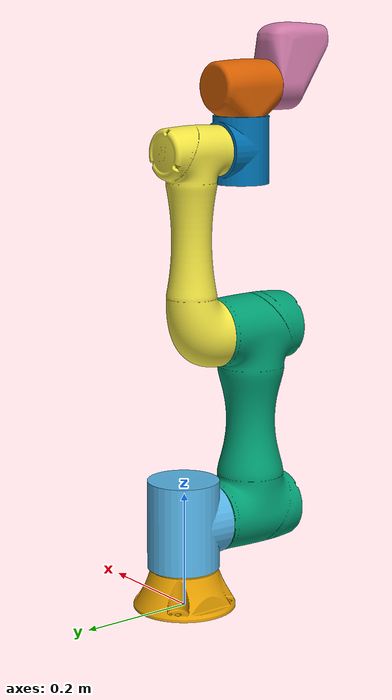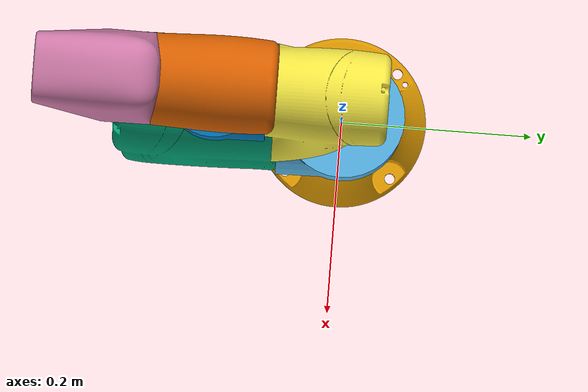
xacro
<?xml version="1.0"?>
<robot xmlns:xacro="http://www.ros.org/wiki/xacro" name="tm5-700">

  <xacro:arg name="ns" default="" />
  <xacro:arg name="prefix" default="" />
    <xacro:arg name="trans_hw_iface" default="hardware_interface/PositionJointInterface" />

  <xacro:include filename="$(find tm_description)/xacro/macro.gazebo.xacro" />
  <xacro:include filename="$(find tm_description)/xacro/macro.transmission.xacro" />
  <xacro:include filename="$(find tm_description)/xacro/macro.materials.xacro" />

  <!-- tm5-700 -->
  <!-- If the user want to use newly generated named robot description file as user_defined.urdf.xacro, -->
  <!-- you must modify 'macro.tm5-700-nominal.urdf.xacro' to 'user_defined.urdf.xacro'  -->
  <xacro:include filename="$(find tm_description)/xacro/macro.tm5-700-nominal.urdf.xacro" />

  <xacro:tmr_gazebo ns="$(arg ns)" prefix="$(arg prefix)" />
  <xacro:tmr_transmission prefix="$(arg prefix)" hw_iface="$(arg trans_hw_iface)" />
  <xacro:tmr_materials/>

  <!-- Arm -->
  <xacro:tm5-700 ns="$(arg ns)" prefix="$(arg prefix)" />

</robot>

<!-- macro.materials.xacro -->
<robot xmlns:xacro="http://www.ros.org/wiki/xacro">
  <xacro:macro name="tmr_materials">
    <material name="none">
      <color rgba="0.0 0.0 0.0 1.0" />
    </material>
    <material name="lightgrey">
      <color rgba="0.5 0.5 0.5 1.0" />
    </material>
    <material name="grey">
      <color rgba="0.75 0.75 0.75 1.0" />
    </material>
    <material name="white">
      <color rgba="0.95 0.95 0.95 1.0" />
    </material>
    <material name="red">
      <color rgba="0.95 0.0 0.0 1.0" />
    </material>
    <material name="orange">
      <color rgba="1.0 0.5 0.0 1.0" />
    </material>
    <material name="yellow">
      <color rgba="1.0 1.0 0.0 1.0" />
    </material>
    <material name="green">
      <color rgba="0.0 1.0 0.0 1.0" />
    </material>
    <material name="blue">
      <color rgba="0.0 0.0 1.0 1.0" />
    </material>
    <material name="indigo">
      <color rgba="0.3 0.3 0.6 1.0" />
    </material>
    <material name="violet">
      <color rgba="0.6 0.0 1.0 1.0" />
    </material>
    <material name="black">
      <color rgba="0.0 0.0 0.0 1.0" />
    </material>
    <material name="darkolive">
      <color rgba="0.3 0.3 0.25 1.0" />
    </material>
  </xacro:macro>
</robot>

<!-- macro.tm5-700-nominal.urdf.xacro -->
<robot xmlns:xacro="http://www.ros.org/wiki/xacro">

  <xacro:include filename="$(find tm_description)/xacro/macro.inertial.xacro" />

  <xacro:macro name="tm5-700" params="ns prefix
    joint_1_lower_limit:=${radians(-270)}    joint_1_upper_limit:=${radians(270)}
    joint_2_lower_limit:=${radians(-180)}    joint_2_upper_limit:=${radians(180)}
    joint_3_lower_limit:=${radians(-155)}    joint_3_upper_limit:=${radians(155)}
    joint_4_lower_limit:=${radians(-180)}    joint_4_upper_limit:=${radians(180)}
    joint_5_lower_limit:=${radians(-180)}    joint_5_upper_limit:=${radians(180)}
    joint_6_lower_limit:=${radians(-270)}    joint_6_upper_limit:=${radians(270)}
    joint_1_velocity_limit:=${radians(180)}
    joint_2_velocity_limit:=${radians(180)}
    joint_3_velocity_limit:=${radians(180)}
    joint_4_velocity_limit:=${radians(225)}
    joint_5_velocity_limit:=${radians(225)}
    joint_6_velocity_limit:=${radians(225)}
    joint_1_effort_limit:=${157}
    joint_2_effort_limit:=${157}
    joint_3_effort_limit:=${157}
    joint_4_effort_limit:=${43}
    joint_5_effort_limit:=${43}
    joint_6_effort_limit:=${43}
    safety_limits:=false safety_pos_margin:=0.15
    safety_k_position:=20">

   <xacro:property name="damping_factor" value="0.000"/>
   <xacro:property name="d1" value="${damping_factor*0.1}"/>
   <xacro:property name="d2" value="${damping_factor*0.1}"/>
   <xacro:property name="d3" value="${damping_factor*0.1}"/>
   <xacro:property name="d4" value="${damping_factor*0.1}"/>
   <xacro:property name="d5" value="${damping_factor*0.1}"/>
   <xacro:property name="d6" value="${damping_factor*0.1}"/>

   <xacro:property name="friction_factor" value="0.000"/>
   <xacro:property name="f1" value="${friction_factor*0.1}"/>
   <xacro:property name="f2" value="${friction_factor*0.1}"/>
   <xacro:property name="f3" value="${friction_factor*0.1}"/>
   <xacro:property name="f4" value="${friction_factor*0.1}"/>
   <xacro:property name="f5" value="${friction_factor*0.1}"/>
   <xacro:property name="f6" value="${friction_factor*0.1}"/>

    <!-- Inertia parameters -->
    <xacro:property name="mass_0" value="1.000" />
    <xacro:property name="mass_1" value="4.032" />
    <xacro:property name="mass_2" value="8.567" />
    <xacro:property name="mass_3" value="2.273" />
    <xacro:property name="mass_4" value="1.576" />
    <xacro:property name="mass_5" value="1.576" />
    <xacro:property name="mass_6" value="0.65" />

    <xacro:property name="unit_factor" value="0.000001"/>
    <xacro:property name="ixx_1" value="${8800.119*unit_factor}" />
    <xacro:property name="ixx_2" value="${23552.072*unit_factor}" />
    <xacro:property name="ixx_3" value="${3380.181*unit_factor}" />
    <xacro:property name="ixx_4" value="${2058.405*unit_factor}" />
    <xacro:property name="ixx_5" value="${2058.405*unit_factor}" />
    <xacro:property name="ixx_6" value="${774.544*unit_factor}" />

    <xacro:property name="iyy_1" value="${11548.982*unit_factor}" />
    <xacro:property name="iyy_2" value="${198251.97*unit_factor}" />
    <xacro:property name="iyy_3" value="${33829.144*unit_factor}" />
    <xacro:property name="iyy_4" value="${2563.079*unit_factor}" />
    <xacro:property name="iyy_5" value="${2563.079*unit_factor}" />
    <xacro:property name="iyy_6" value="${1383.811*unit_factor}" />

    <xacro:property name="izz_1" value="${11970.081*unit_factor}" />
    <xacro:property name="izz_2" value="${204592.54*unit_factor}" />
    <xacro:property name="izz_3" value="${34328.203*unit_factor}" />
    <xacro:property name="izz_4" value="${2643.21*unit_factor}" />
    <xacro:property name="izz_5" value="${2643.21*unit_factor}" />
    <xacro:property name="izz_6" value="${1559.496*unit_factor}" />

<!--LinkDescription-->
  <link name="${prefix}link_0">
    <visual>
      <geometry>
        <mesh filename="package://tm_description/meshes/tm5-900/visual/tm5-base.obj" />
      </geometry>
    </visual>
    <collision>
      <geometry>
        <mesh filename="package://tm_description/meshes/tm5-900/collision/tm5-base_c.stl" />
      </geometry>
    </collision>
<!--inertial-->
    <xacro:cylinder_inertial_z radius="0.06" length="0.05" mass="${mass_0}">
      <origin rpy="0.000000 0.000000 0.000000" xyz="0.000000 0.000000 0.000000" />
    </xacro:cylinder_inertial_z>
  </link>
  <joint name="${prefix}joint_1" type="revolute">
    <parent link="${prefix}link_0" />
    <child link="${prefix}link_1" />
    <origin rpy="0.000000 -0.000000 0.000000" xyz="0.000000 0.000000 0.145200" />
    <axis xyz="0 0 1" />
<!--limit-->
    <limit lower="${joint_1_lower_limit}" upper="${joint_1_upper_limit}" velocity="${joint_1_velocity_limit}" effort="${joint_1_effort_limit}" />
    <xacro:if value="${safety_limits}">
      <safety_controller soft_lower_limit="${joint_1_lower_limit + safety_pos_margin}" soft_upper_limit="${joint_1_upper_limit - safety_pos_margin}" k_position="${safety_k_position}" k_velocity="0.0" />
    </xacro:if>
    <dynamics damping="${d1}" friction="${f1}" />
  </joint>
  <link name="${prefix}link_1">
    <visual>
      <geometry>
        <mesh filename="package://tm_description/meshes/tm5-900/visual/tmr_400w_01.obj" />
      </geometry>
    </visual>
    <collision>
      <geometry>
        <mesh filename="package://tm_description/meshes/tm5-900/collision/tmr_400w_01_c.stl" />
      </geometry>
    </collision>
    <inertial>
      <origin rpy="0.000000 0.000000 0.000000" xyz="0.000000 0.000000 0.000000" />
      <mass value="${mass_1}" />
      <inertia ixx="${ixx_1}" ixy="0.000000" ixz="0.000000" iyy="${iyy_1}" iyz="0.000000" izz="${izz_1}" />
    </inertial>
  </link>
  <joint name="${prefix}joint_2" type="revolute">
    <parent link="${prefix}link_1" />
    <child link="${prefix}link_2" />
    <origin rpy="-1.570796 -1.570796 0.000000" xyz="0.000000 0.000000 0.000000" />
    <axis xyz="0 0 1" />
<!--limit-->
    <limit lower="${joint_2_lower_limit}" upper="${joint_2_upper_limit}" velocity="${joint_2_velocity_limit}" effort="${joint_2_effort_limit}" />
    <xacro:if value="${safety_limits}">
      <safety_controller soft_lower_limit="${joint_2_lower_limit + safety_pos_margin}" soft_upper_limit="${joint_2_upper_limit - safety_pos_margin}" k_position="${safety_k_position}" k_velocity="0.0" />
    </xacro:if>
    <dynamics damping="${d2}" friction="${f2}" />
  </joint>
  <link name="${prefix}link_2">
    <visual>
      <geometry>
        <mesh filename="package://tm_description/meshes/tm5-700/visual/tm5-700_arm1.obj" />
      </geometry>
    </visual>
    <collision>
      <geometry>
        <mesh filename="package://tm_description/meshes/tm5-700/collision/tm5-700_arm1_c.stl" />
      </geometry>
    </collision>
    <inertial>
      <origin rpy="0.000000 0.000000 0.000000" xyz="0.000000 0.000000 0.000000" />
      <mass value="${mass_2}" />
      <inertia ixx="${ixx_2}" ixy="0.000000" ixz="0.000000" iyy="${iyy_2}" iyz="0.000000" izz="${izz_2}" />
    </inertial>
  </link>
  <joint name="${prefix}joint_3" type="revolute">
    <parent link="${prefix}link_2" />
    <child link="${prefix}link_3" />
    <origin rpy="0.000000 -0.000000 0.000000" xyz="0.329000 0.000000 0.000000" />
    <axis xyz="0 0 1" />
<!--limit-->
    <limit lower="${joint_3_lower_limit}" upper="${joint_3_upper_limit}" velocity="${joint_3_velocity_limit}" effort="${joint_3_effort_limit}" />
    <xacro:if value="${safety_limits}">
      <safety_controller soft_lower_limit="${joint_3_lower_limit + safety_pos_margin}" soft_upper_limit="${joint_3_upper_limit - safety_pos_margin}" k_position="${safety_k_position}" k_velocity="0.0" />
    </xacro:if>
    <dynamics damping="${d3}" friction="${f3}" />
  </joint>
  <link name="${prefix}link_3">
    <visual>
      <geometry>
        <mesh filename="package://tm_description/meshes/tm5-700/visual/tm5-700_arm2.obj" />
      </geometry>
    </visual>
    <collision>
      <geometry>
        <mesh filename="package://tm_description/meshes/tm5-700/collision/tm5-700_arm2_c.stl" />
      </geometry>
    </collision>
    <inertial>
      <origin rpy="0.000000 0.000000 0.000000" xyz="0.000000 0.000000 0.000000" />
      <mass value="${mass_3}" />
      <inertia ixx="${ixx_3}" ixy="0.000000" ixz="0.000000" iyy="${iyy_3}" iyz="0.000000" izz="${izz_3}" />
    </inertial>
  </link>
  <joint name="${prefix}joint_4" type="revolute">
    <parent link="${prefix}link_3" />
    <child link="${prefix}link_4" />
    <origin rpy="0.000000 -0.000000 1.570796" xyz="0.311500 0.000000 -0.122300" />
    <axis xyz="0 0 1" />
<!--limit-->
    <limit lower="${joint_4_lower_limit}" upper="${joint_4_upper_limit}" velocity="${joint_4_velocity_limit}" effort="${joint_4_effort_limit}" />
    <xacro:if value="${safety_limits}">
      <safety_controller soft_lower_limit="${joint_4_lower_limit + safety_pos_margin}" soft_upper_limit="${joint_4_upper_limit - safety_pos_margin}" k_position="${safety_k_position}" k_velocity="0.0" />
    </xacro:if>
    <dynamics damping="${d4}" friction="${f4}" />
  </joint>
  <link name="${prefix}link_4">
    <visual>
      <geometry>
        <mesh filename="package://tm_description/meshes/tm5-900/visual/tmr_100w_01.obj" />
      </geometry>
    </visual>
    <collision>
      <geometry>
        <mesh filename="package://tm_description/meshes/tm5-900/collision/tmr_100w_01_c.stl" />
      </geometry>
    </collision>
    <inertial>
      <origin rpy="0.000000 0.000000 0.000000" xyz="0.000000 0.000000 0.000000" />
      <mass value="${mass_4}" />
      <inertia ixx="${ixx_4}" ixy="0.000000" ixz="0.000000" iyy="${iyy_4}" iyz="0.000000" izz="${izz_4}" />
    </inertial>
  </link>
  <joint name="${prefix}joint_5" type="revolute">
    <parent link="${prefix}link_4" />
    <child link="${prefix}link_5" />
    <origin rpy="1.570796 -0.000000 0.000000" xyz="0.000000 -0.106000 0.000000" />
    <axis xyz="0 0 1" />
<!--limit-->
    <limit lower="${joint_5_lower_limit}" upper="${joint_5_upper_limit}" velocity="${joint_5_velocity_limit}" effort="${joint_5_effort_limit}" />
    <xacro:if value="${safety_limits}">
      <safety_controller soft_lower_limit="${joint_5_lower_limit + safety_pos_margin}" soft_upper_limit="${joint_5_upper_limit - safety_pos_margin}" k_position="${safety_k_position}" k_velocity="0.0" />
    </xacro:if>
    <dynamics damping="${d5}" friction="${f5}" />
  </joint>
  <link name="${prefix}link_5">
    <visual>
      <geometry>
        <mesh filename="package://tm_description/meshes/tm5-900/visual/tmr_100w_02.obj" />
      </geometry>
    </visual>
    <collision>
      <geometry>
        <mesh filename="package://tm_description/meshes/tm5-900/collision/tmr_100w_02_c.stl" />
      </geometry>
    </collision>
    <inertial>
      <origin rpy="0.000000 0.000000 0.000000" xyz="0.000000 0.000000 0.000000" />
      <mass value="${mass_5}" />
      <inertia ixx="${ixx_5}" ixy="0.000000" ixz="0.000000" iyy="${iyy_5}" iyz="0.000000" izz="${izz_5}" />
    </inertial>
  </link>
  <joint name="${prefix}joint_6" type="revolute">
    <parent link="${prefix}link_5" />
    <child link="${prefix}link_6" />
    <origin rpy="1.570796 -0.000000 0.000000" xyz="0.000000 -0.113150 0.000000" />
    <axis xyz="0 0 1" />
<!--limit-->
    <limit lower="${joint_6_lower_limit}" upper="${joint_6_upper_limit}" velocity="${joint_6_velocity_limit}" effort="${joint_6_effort_limit}" />
    <xacro:if value="${safety_limits}">
      <safety_controller soft_lower_limit="${joint_6_lower_limit + safety_pos_margin}" soft_upper_limit="${joint_6_upper_limit - safety_pos_margin}" k_position="${safety_k_position}" k_velocity="0.0" />
    </xacro:if>
    <dynamics damping="${d6}" friction="${f6}" />
  </joint>
  <link name="${prefix}link_6">
    <visual>
      <geometry>
        <mesh filename="package://tm_description/meshes/tm5-900/visual/tmr_ee.obj" />
      </geometry>
    </visual>
    <collision>
      <geometry>
        <mesh filename="package://tm_description/meshes/tm5-900/collision/tmr_ee_c.stl" />
      </geometry>
    </collision>
    <inertial>
      <origin rpy="0.000000 0.000000 0.000000" xyz="0.000000 0.000000 0.000000" />
      <mass value="${mass_6}" />
      <inertia ixx="${ixx_6}" ixy="0.000000" ixz="0.000000" iyy="${iyy_6}" iyz="0.000000" izz="${izz_6}" />
    </inertial>
  </link>
  <link name="${prefix}base" />
  <joint name="${prefix}base_fixed_joint" type="fixed">
    <parent link="${prefix}base" />
    <child link="${prefix}link_0" />
    <origin rpy="0.000000 0.000000 0.000000" xyz="0.000000 0.000000 0.000000" />
  </joint>
  <link name="${prefix}flange" />
  <joint name="${prefix}flange_fixed_joint" type="fixed">
    <parent link="${prefix}link_6" />
    <child link="${prefix}flange" />
    <origin rpy="0.000000 0.000000 0.000000" xyz="0.000000 0.000000 0.000000" />
  </joint>
<!--LinkDescription-->

  </xacro:macro>

</robot>
